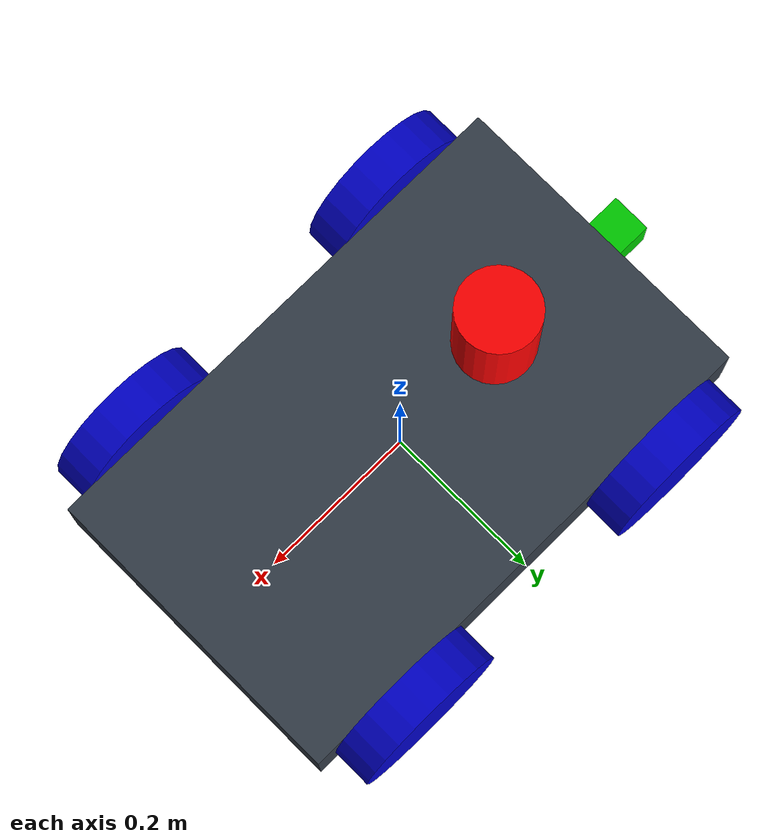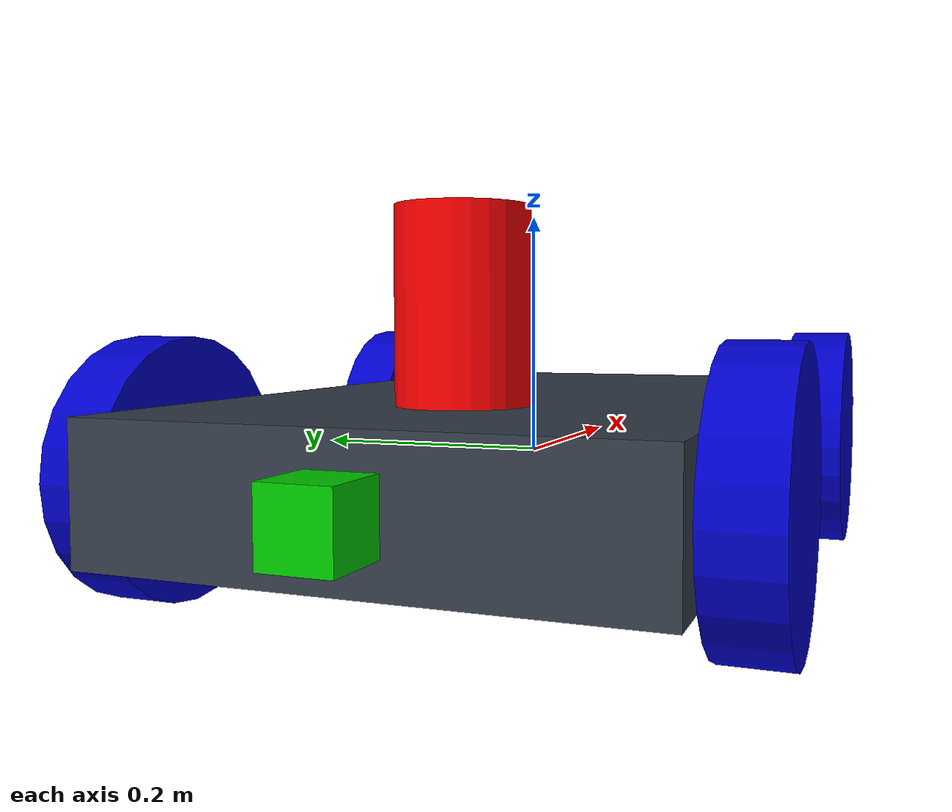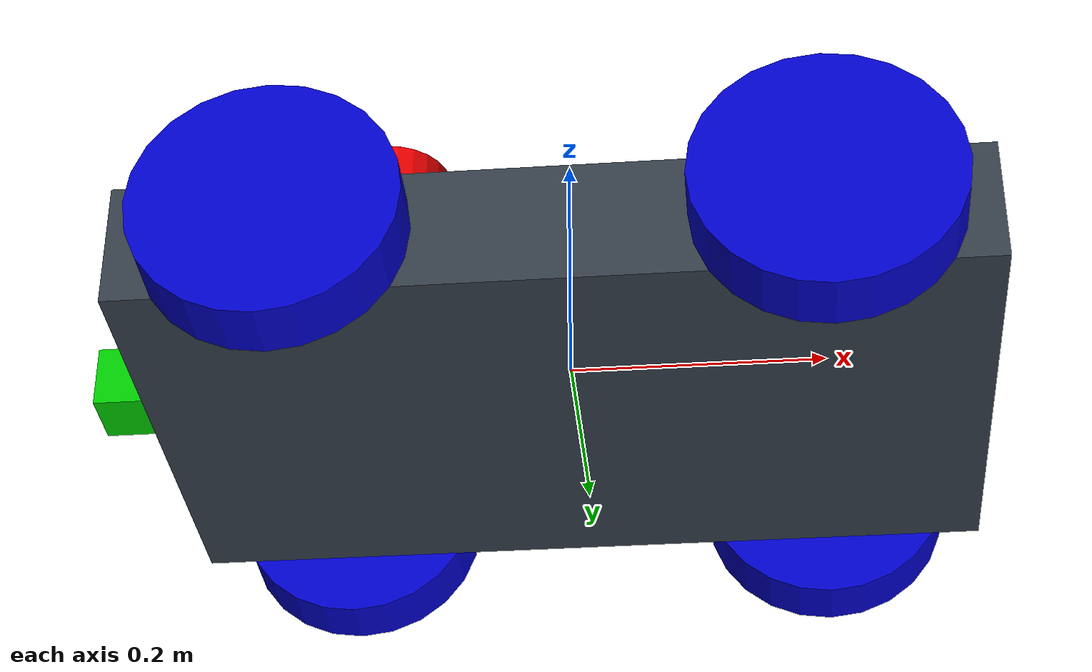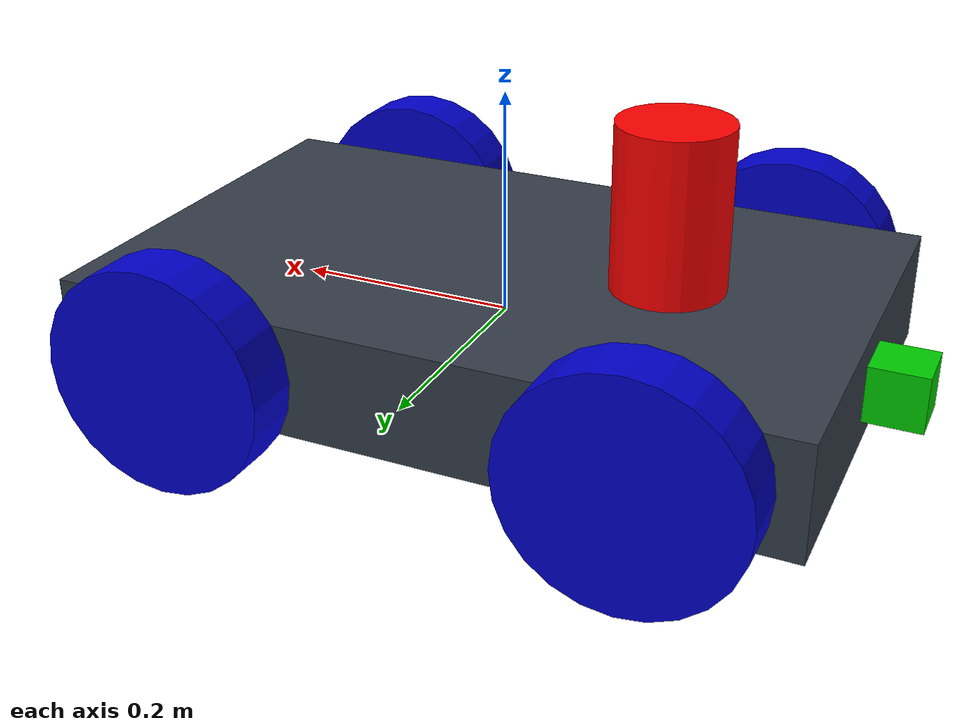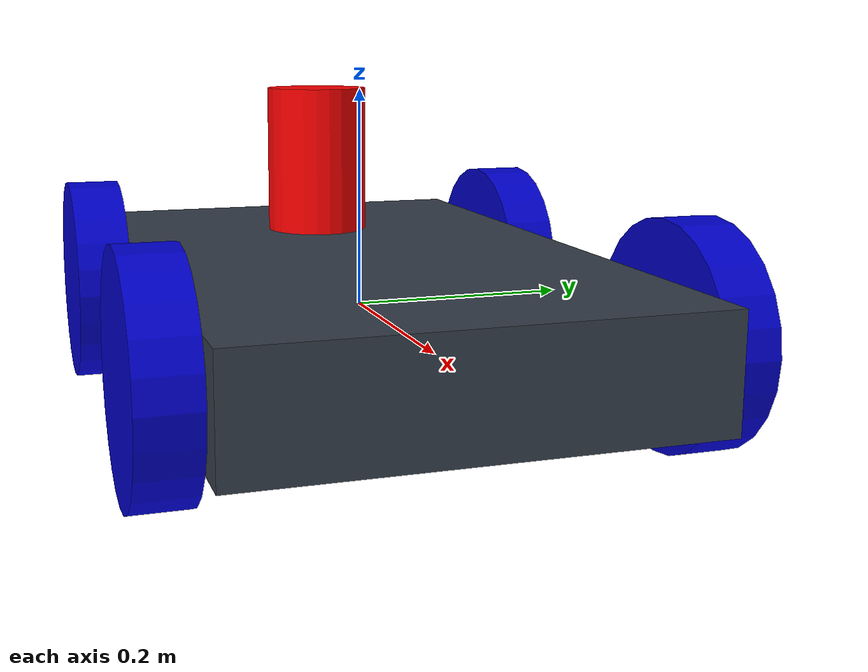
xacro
<?xml version="1.0" ?>

<robot xmlns:xacro="http://www.ros.org/wiki/xacro" name="uomeer">
  <xacro:include filename="$(find uomeer_description)/urdf/colors.xacro" />
  <xacro:include filename="$(find uomeer_description)/urdf/lidar_gazebo.xacro" />
  <xacro:include filename="$(find uomeer_description)/urdf/camera.xacro" />
  <xacro:include filename="$(find uomeer_description)/urdf/skid_steering.xacro" />

  <link name="odom"/>
  <joint name="robot_footprint_joint" type="fixed">
    <origin xyz="0 0 0" rpy="0 0 0" />
    <parent link="odom" />
    <child link="base_link" />
  </joint>
  <link name="base_link">
    <inertial>
      <origin xyz="0.0 0.0 0.0" rpy="0.0 0.0 0.0"/>
      <mass value="10.0"/>
      <inertia ixx="0.1" ixy="0.0" ixz="0.0" iyy="0.1" iyz="0.0" izz="0.1"/>
    </inertial>
    <visual name="base_link">
      <origin xyz="0.0 0.0 0.0" rpy="0.0 0.0 0.0"/>
      <geometry>
        <box size="0.65 0.4 0.1"/>
      </geometry>
      <material name="gray">
      </material>
    </visual>
    <collision>
      <origin xyz="0.0 0.0 0.0" rpy="0.0 0.0 0.0"/>
      <geometry>
        <box size="0.65 0.4 0.1"/>
      </geometry>
    </collision>
   </link>

      <!-- xacro setup -->

  <xacro:macro name="wheel" params="name x y z r p n">

      <link name="${name}">
          <inertial>
              <origin xyz="0.0 0.0 0.0" rpy="0.0 0.0 0.0"/>
              <mass value="2.0"/>
              <inertia ixx="0.1" ixy="0.0" ixz="0.0" iyy="0.1" iyz="0.0" izz="0.1"/>
          </inertial>
          <visual name="${name}">
              <origin xyz="0.0 0.0 0.0" rpy="0.0 0.0 0.0"/>
              <geometry>
                  <cylinder radius="0.1" length="0.05"/>
              </geometry>
              <material name="blue">
              </material>
          </visual>
          <collision>
              <origin xyz="0.0 0.0 0.0" rpy="0.0 0.0 0.0"/>
              <geometry>
                  <cylinder radius="0.1" length="0.05"/>
              </geometry>
          </collision>
      </link>

      <joint name="Joint_${name}" type="continuous">
          <origin xyz="${x} ${y} ${z}" rpy="${r} ${p} ${n}"/>
          <parent link="base_link"/>
          <child link="${name}"/>
          <axis xyz="0.0 0.0 1.0"/>
      </joint>
  </xacro:macro>

      <!--wheel with xacro-->
  <xacro:wheel name="Right_Wheel_Back" x="0.2" y="0.225" z="0.0" r="1.5708" p="0.0" n="0.0"/>
  <xacro:wheel name="Left_Wheel_Front" x="-0.2" y="-0.225" z="0.0" r="1.5708" p="0.0" n="0.0"/>
  <xacro:wheel name="Right_Wheel_Front" x="-0.2" y="0.225" z="0.0" r="1.5708" p="0.0" n="0.0"/>
  <xacro:wheel name="Left_Wheel_Back" x="0.2" y="-0.225" z="0.0" r="1.5708" p="0.0" n="0.0"/>

      <!-- lidar -->

  <link name="lidar_link">
      <inertial>
          <origin xyz="0.0 0.0 0.0" rpy="0.0 0.0 0.0"/>
          <mass value="0.25"/>
          <inertia ixx="1.0" ixy="0.0" ixz="0.0" iyy="1.0" iyz="0.0" izz="1.0"/>
      </inertial>
      <visual name="lidar_link">
          <origin xyz="0.0 0.0 0.0" rpy="0.0 0.0 0.0"/>
          <geometry>
              <cylinder radius="0.05" length="0.15"/>
          </geometry>
          <material name="red">
          </material>
      </visual>
      <collision>
          <origin xyz="0.0 0.0 0.0" rpy="0.0 0.0 0.0"/>
          <geometry>
              <cylinder radius="0.05" length="0.15"/>
          </geometry>
      </collision>
  </link>

  <joint name="lidar_joint" type="fixed">
    <origin xyz="-0.15 0.0 0.12" rpy="0.0 0.0 3.14"/>
    <parent link="base_link"/>
    <child link="lidar_link"/>
    <axis xyz="0.0 0.0 0.0"/>
  </joint>

      <!-- camera -->

  <link name="camera_link">
      <inertial>
          <origin xyz="0.0 0.0 0.0" rpy="0.0 0.0 0.0"/>
          <mass value="0.35"/>
          <inertia ixx="1.0" ixy="0.0" ixz="0.0" iyy="1.0" iyz="0.0" izz="1.0"/>
      </inertial>
      <visual name="camera">
          <origin xyz="0.0 0.0 0.0" rpy="0.0 0.0 0.0"/>
          <geometry>
              <box size="0.05 0.05 0.05"/>
          </geometry>
          <material name="green"/>
      </visual>
      <collision>
          <origin xyz="0.0 0.0 0.0" rpy="0.0 0.0 0.0"/>
          <geometry>
              <box size="0.05 0.05 0.05"/>
          </geometry>
      </collision>
  </link>

  <joint name="camera_joint" type="fixed">
      <origin xyz="-0.35 0.0 0.0" rpy="0.0 0.0 3.14"/>
      <parent link="base_link"/>
      <child link="camera_link"/>
      <axis xyz="0.0 1.0 0.0"/>
  </joint>
</robot>

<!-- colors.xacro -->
<robot name="uomeer" xmlns:xacro="http://ros.org/wiki/xacro">

    <material name="black">
        <color rgba="0.0 0.0 0.0 1.0"/>
    </material>
    <material name="gray">
        <color rgba="0.203125 0.23828125 0.28515625 1.0"/>
    </material>
    <material name="white">
        <color rgba="1.0 1.0 1.0 1.0"/>
    </material>
    <material name="blue">
        <color rgba="0 0 0.8 1"/>
    </material>
    <material name="red">
        <color rgba="1.0 0.0 0.0 1.0"/>
    </material>
    <material name="green">
        <color rgba="0.0 0.8 0.0 1.0"/>
    </material>

    <gazebo reference="base_link">
        <material>
            Gazebo/Gray
        </material>
    </gazebo>

    <gazebo reference="Right_Wheel_Back">
        <material>
            Gazebo/Blue
        </material>
    </gazebo>

    <gazebo reference="Left_Wheel_Front">
        <material>
            Gazebo/Blue
        </material>
    </gazebo>

    <gazebo reference="Right_Wheel_Front">
        <material>
            Gazebo/Blue
        </material>
    </gazebo>

    <gazebo reference="Left_Wheel_Back">
        <material>
            Gazebo/Blue
        </material>
    </gazebo>

    <gazebo reference="lidar_link">
        <material>
            Gazebo/Red
        </material>
    </gazebo>

    <gazebo reference="camera_link">
        <material>
            Gazebo/Yellow
        </material>
    </gazebo>

</robot>
